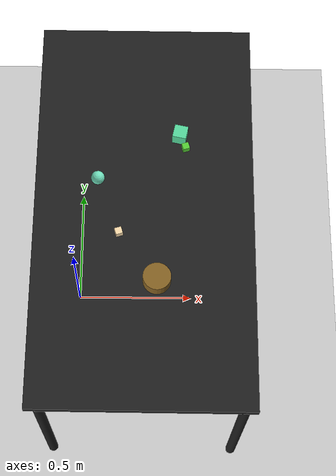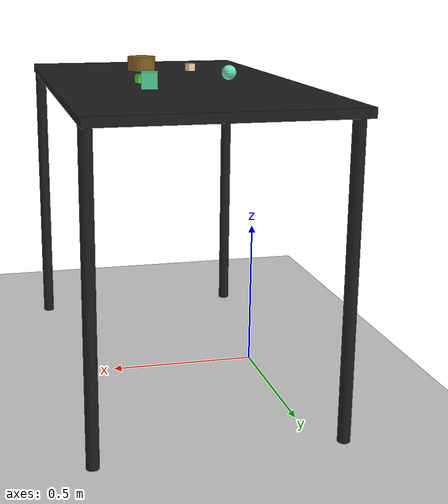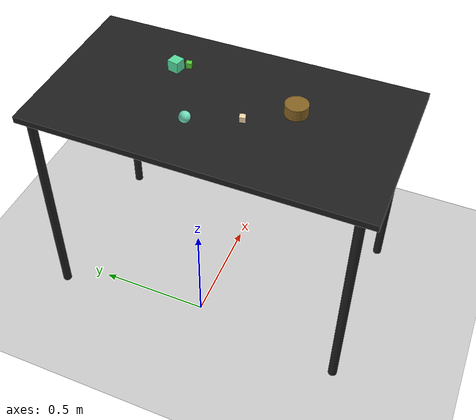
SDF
<?xml version="1.0" ?>
<sdf version="1.6">
  <world name="arm_world">
    <plugin filename="gz-sim-physics-system" name="gz::sim::systems::Physics">
      <engine>
        <filename>libgz-physics-bullet-featherstone-plugin.so</filename>
      </engine>
    </plugin>
    <plugin filename="gz-sim-user-commands-system" name="gz::sim::systems::UserCommands"/>
    <plugin filename="gz-sim-scene-broadcaster-system" name="gz::sim::systems::SceneBroadcaster"/>
    <plugin filename="gz-sim-sensors-system" name="gz::sim::systems::Sensors">
      <render_engine>ogre2</render_engine>
    </plugin>
    <gravity>0.0 0.0 -9.8</gravity>
    <scene>
      <shadows>false</shadows>
    </scene>
    <gui>
      <camera name="user_camera">
        <pose>0.75 -0.75 1.4 0 0.29 2.21</pose>
      </camera>
    </gui>
    <include>
      <uri>https://fuel.gazebosim.org/1.0/OpenRobotics/models/Sun</uri>
    </include>
    <model name="table">
      <static>true</static>
      <include>
        <uri>model://table</uri>
      </include>
      <pose>0.29 0 0 0 0 1.5708</pose>
    </model>
    <model name="ground_plane">
      <static>true</static>
      <link name="link">
        <collision name="collision">
          <geometry>
            <plane>
              <normal>0 0 1</normal>
            </plane>
          </geometry>
          <surface>
            <friction>
              <ode>
                <mu>1.0</mu>
                <mu2>1.0</mu2>
              </ode>
            </friction>
          </surface>
        </collision>
        <visual name="visual">
          <geometry>
            <plane>
              <normal>0 0 1</normal>
              <size>100 100</size>
            </plane>
          </geometry>
          <material>
            <ambient>0.8 0.8 0.8 1</ambient>
            <diffuse>0.8 0.8 0.8 1</diffuse>
            <specular>0.8 0.8 0.8 1</specular>
          </material>
        </visual>
      </link>
    </model>
    <model name="cube_s_0">
      <pose>0.201 -0.113 1.05 0 0 1.87</pose>
      <link name="cube_s_0_link">
        <collision name="cube_s_0_collision">
          <geometry>
            <box>
              <size>0.025 0.025 0.025</size>
            </box>
          </geometry>
        </collision>
        <visual name="cube_s_0_visual">
          <geometry>
            <box>
              <size>0.025 0.025 0.025</size>
            </box>
          </geometry>
          <material>
            <ambient>0.99 0.87 0.68 1</ambient>
            <diffuse>0.99 0.87 0.68 1</diffuse>
          </material>
        </visual>
        <velocity_decay>
          <linear>1</linear>
          <angular>1</angular>
        </velocity_decay>
      </link>
    </model>
    <model name="cylinder_l_1">
      <pose>0.339 -0.288 1.05 0 0 5.79</pose>
      <link name="cylinder_l_1_link">
        <collision name="cylinder_l_1_collision">
          <geometry>
            <cylinder>
              <radius>0.05</radius>
              <length>0.05</length>
            </cylinder>
          </geometry>
        </collision>
        <visual name="cylinder_l_1_visual">
          <geometry>
            <cylinder>
              <radius>0.05</radius>
              <length>0.05</length>
            </cylinder>
          </geometry>
          <material>
            <ambient>0.53 0.39 0.14 1</ambient>
            <diffuse>0.53 0.39 0.14 1</diffuse>
          </material>
        </visual>
        <velocity_decay>
          <linear>1</linear>
          <angular>1</angular>
        </velocity_decay>
      </link>
    </model>
    <model name="cube_m_2">
      <pose>0.42 0.279 1.05 0 0 2.93</pose>
      <link name="cube_m_2_link">
        <collision name="cube_m_2_collision">
          <geometry>
            <box>
              <size>0.05 0.05 0.05</size>
            </box>
          </geometry>
        </collision>
        <visual name="cube_m_2_visual">
          <geometry>
            <box>
              <size>0.05 0.05 0.05</size>
            </box>
          </geometry>
          <material>
            <ambient>0.34 0.86 0.62 1</ambient>
            <diffuse>0.34 0.86 0.62 1</diffuse>
          </material>
        </visual>
        <velocity_decay>
          <linear>1</linear>
          <angular>1</angular>
        </velocity_decay>
      </link>
    </model>
    <model name="sphere_m_3">
      <pose>0.121 0.099 1.05 0 0 3.02</pose>
      <link name="sphere_m_3_link">
        <collision name="sphere_m_3_collision">
          <geometry>
            <sphere>
              <radius>0.025</radius>
            </sphere>
          </geometry>
        </collision>
        <visual name="sphere_m_3_visual">
          <geometry>
            <sphere>
              <radius>0.025</radius>
            </sphere>
          </geometry>
          <material>
            <ambient>0.44 0.88 0.74 1</ambient>
            <diffuse>0.44 0.88 0.74 1</diffuse>
          </material>
        </visual>
        <velocity_decay>
          <linear>1</linear>
          <angular>1</angular>
        </velocity_decay>
      </link>
    </model>
    <model name="cube_s_4">
      <pose>0.44 0.227 1.05 0 0 4.99</pose>
      <link name="cube_s_4_link">
        <collision name="cube_s_4_collision">
          <geometry>
            <box>
              <size>0.025 0.025 0.025</size>
            </box>
          </geometry>
        </collision>
        <visual name="cube_s_4_visual">
          <geometry>
            <box>
              <size>0.025 0.025 0.025</size>
            </box>
          </geometry>
          <material>
            <ambient>0.34 0.82 0.21 1</ambient>
            <diffuse>0.34 0.82 0.21 1</diffuse>
          </material>
        </visual>
        <velocity_decay>
          <linear>1</linear>
          <angular>1</angular>
        </velocity_decay>
      </link>
    </model>
  </world>
</sdf>

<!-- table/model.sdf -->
<sdf version="1.5">
  <model name="table">
    <static>true</static>
    <link name="link">
      <collision name="surface">
        <pose>0 0 1.0 0 0 0</pose>
        <geometry>
          <box>
            <size>1.5 0.8 0.03</size>
          </box>
        </geometry>
        <surface>
          <friction>
            <ode>
              <mu>0.6</mu>
              <mu2>0.6</mu2>
            </ode>
          </friction>
        </surface>
      </collision>
      <visual name="surface">
        <pose>0 0 1.0 0 0 0</pose>
        <geometry>
          <box>
            <size>1.5 0.8 0.03</size>
          </box>
        </geometry>
        <material>
          <script>
            <uri>file://media/materials/scripts/gazebo.material</uri>
            <name>Gazebo/Black</name>
          </script>
        </material>
      </visual>
      <collision name="front_left_leg">
        <pose>0.68 0.38 0.5 0 0 0</pose>
        <geometry>
          <cylinder>
            <radius>0.02</radius>
            <length>1.0</length>
          </cylinder>
        </geometry>
      </collision>
      <visual name="front_left_leg">
        <pose>0.68 0.38 0.5 0 0 0</pose>
        <geometry>
          <cylinder>
            <radius>0.02</radius>
            <length>1.0</length>
          </cylinder>
        </geometry>
        <material>
          <script>
            <uri>file://media/materials/scripts/gazebo.material</uri>
            <name>Gazebo/Black</name>
          </script>
        </material>
      </visual>
      <collision name="front_right_leg">
        <pose>0.68 -0.38 0.5 0 0 0</pose>
        <geometry>
          <cylinder>
            <radius>0.02</radius>
            <length>1.0</length>
          </cylinder>
        </geometry>
      </collision>
      <visual name="front_right_leg">
        <pose>0.68 -0.38 0.5 0 0 0</pose>
        <geometry>
          <cylinder>
            <radius>0.02</radius>
            <length>1.0</length>
          </cylinder>
        </geometry>
        <material>
          <script>
            <uri>file://media/materials/scripts/gazebo.material</uri>
            <name>Gazebo/Black</name>
          </script>
        </material>
      </visual>
      <collision name="back_right_leg">
        <pose>-0.68 -0.38 0.5 0 0 0</pose>
        <geometry>
          <cylinder>
            <radius>0.02</radius>
            <length>1.0</length>
          </cylinder>
        </geometry>
      </collision>
      <visual name="back_right_leg">
        <pose>-0.68 -0.38 0.5 0 0 0</pose>
        <geometry>
          <cylinder>
            <radius>0.02</radius>
            <length>1.0</length>
          </cylinder>
        </geometry>
        <material>
          <script>
            <uri>file://media/materials/scripts/gazebo.material</uri>
            <name>Gazebo/Black</name>
          </script>
        </material>
      </visual>
      <collision name="back_left_leg">
        <pose>-0.68 0.38 0.5 0 0 0</pose>
        <geometry>
          <cylinder>
            <radius>0.02</radius>
            <length>1.0</length>
          </cylinder>
        </geometry>
      </collision>
      <visual name="back_left_leg">
        <pose>-0.68 0.38 0.5 0 0 0</pose>
        <geometry>
          <cylinder>
            <radius>0.02</radius>
            <length>1.0</length>
          </cylinder>
        </geometry>
        <material>
          <script>
            <uri>file://media/materials/scripts/gazebo.material</uri>
            <name>Gazebo/Black</name>
          </script>
        </material>
      </visual>
    </link>
  </model>
</sdf>
